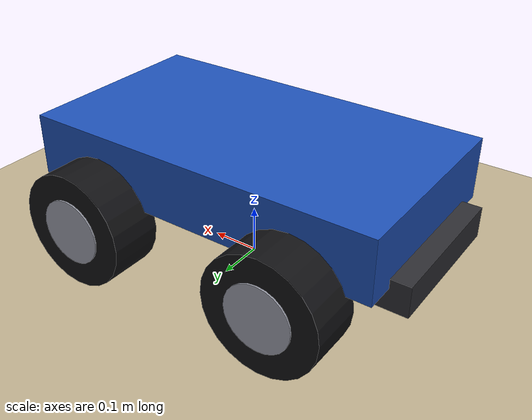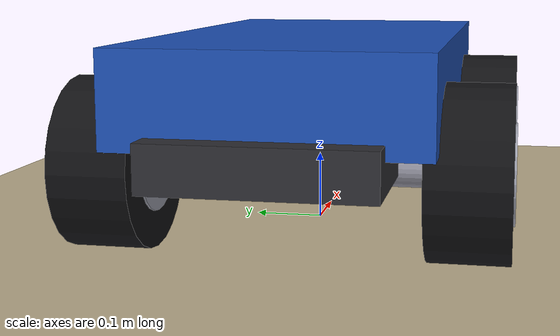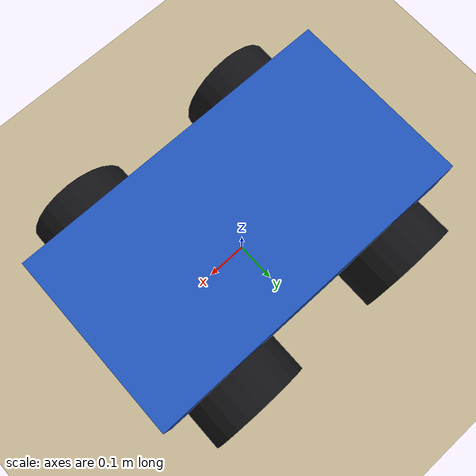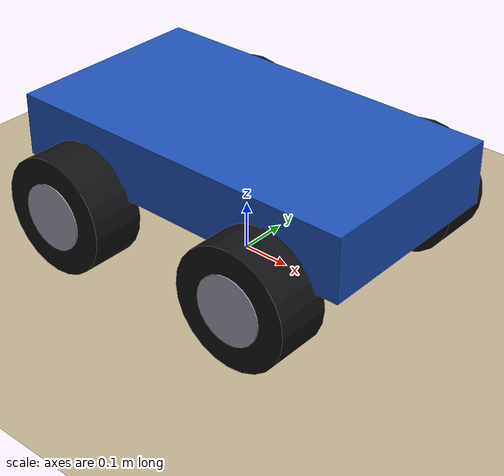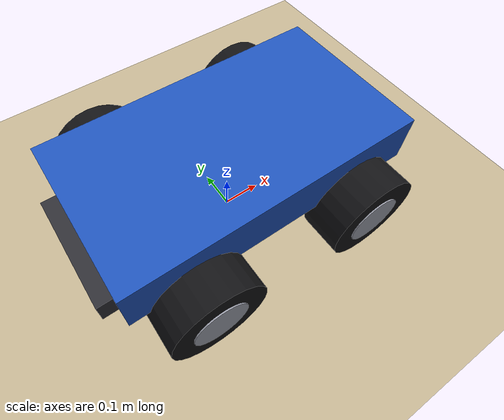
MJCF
<!-- Placeholder to just get rl working mostly made with AI!!!!! -->

<mujoco model="rover_scene">

  <compiler angle="radian" autolimits="true"/>

  <!-- timestep dropped to 0.002 s; implicitfast handles stiff contacts better -->
  <option timestep="0.002"
          gravity="0 0 -9.81"
          iterations="50"
          solver="Newton"
          integrator="implicitfast"/>

  <visual>
    <global offwidth="1280" offheight="720"/>
    <quality shadowsize="4096"/>
    <map znear="0.01" zfar="200"/>
  </visual>

  <asset>
    <texture name="checker"
             type="2d"
             builtin="checker"
             width="512" height="512"
             rgb1="0.68 0.62 0.50"
             rgb2="0.82 0.76 0.62"/>
    <material name="ground_mat"
              texture="checker"
              texrepeat="20 10"
              reflectance="0.06"/>

    <material name="chassis_mat" rgba="0.12 0.32 0.72 1"  reflectance="0.15"/>
    <material name="wheel_mat"   rgba="0.07 0.07 0.08 1"  reflectance="0.05"/>
    <material name="rim_mat"     rgba="0.62 0.63 0.68 1"  reflectance="0.35"/>
    <material name="ballast_mat" rgba="0.18 0.18 0.20 1"  reflectance="0.05"/>
    <material name="axle_mat"    rgba="0.55 0.55 0.60 1"  reflectance="0.25"/>

    <material name="goal_outer_mat" rgba="0.05 0.90 0.15 0.55"/>
    <material name="goal_inner_mat" rgba="0.05 1.00 0.05 0.95"/>
  </asset>

  <worldbody>

    <light name="key_sun"
           directional="true"
           pos="6 -4 10"
           dir="-0.45 0.28 -1.0"
           diffuse="0.88 0.82 0.74"
           specular="0.30 0.28 0.24"
           castshadow="true"/>

    <light name="fill"
           directional="true"
           pos="-5 4 6"
           dir="0.42 -0.32 -0.85"
           diffuse="0.22 0.25 0.36"
           specular="0.0 0.0 0.0"
           castshadow="false"/>

    <light name="rim"
           directional="true"
           pos="0 6 5"
           dir="0.0 -0.75 -0.65"
           diffuse="0.14 0.16 0.20"
           specular="0.06 0.06 0.08"
           castshadow="false"/>

    <geom name="ground"
          type="plane"
          size="120 60 0.1"
          material="ground_mat"
          condim="3"
          friction="1.0 0.005 0.0001"/>

    <body name="chassis" pos="0 0 0.20">
      <freejoint name="root"/>

      <geom name="chassis_body"
            type="box"
            size="0.38 0.21 0.065"
            pos="0 0 0.025"
            material="chassis_mat"
            mass="3.5"/>

      <geom name="ballast"
            type="box"
            size="0.27 0.15 0.032"
            pos="-0.15 0 -0.052"
            material="ballast_mat"
            mass="7.0"/>

      <geom name="axle_f"  type="cylinder" size="0.022 0.235"
            pos=" 0.22 0 -0.08" euler="1.5708 0 0"
            material="axle_mat" mass="0.05"
            contype="0" conaffinity="0"/>
      <geom name="axle_r"  type="cylinder" size="0.022 0.235"
            pos="-0.22 0 -0.08" euler="1.5708 0 0"
            material="axle_mat" mass="0.05"
            contype="0" conaffinity="0"/>

      <site name="imu" pos="0 0 0" size="0.01"/>

      <camera name="robot_pov"
              pos="0.15 0 0.25"
              xyaxes="0 -1 0  0.18 0 1"
              fovy="80"/>

      <body name="wheel_fl" pos=" 0.22  0.245 -0.08">
        <joint name="spin_fl" type="hinge" axis="0 1 0" damping="2.0"/>
        <geom name="tyre_fl" type="cylinder" size="0.12 0.055"
              euler="1.5708 0 0" material="wheel_mat" mass="0.65"
              friction="1.3 0.005 0.0001"/>
        <geom name="rim_fl"  type="cylinder" size="0.068 0.058"
              euler="1.5708 0 0" material="rim_mat"   mass="0.0"
              contype="0" conaffinity="0"/>
      </body>

      <body name="wheel_fr" pos=" 0.22 -0.245 -0.08">
        <joint name="spin_fr" type="hinge" axis="0 1 0" damping="2.0"/>
        <geom name="tyre_fr" type="cylinder" size="0.12 0.055"
              euler="1.5708 0 0" material="wheel_mat" mass="0.65"
              friction="1.3 0.005 0.0001"/>
        <geom name="rim_fr"  type="cylinder" size="0.068 0.058"
              euler="1.5708 0 0" material="rim_mat"   mass="0.0"
              contype="0" conaffinity="0"/>
      </body>

      <body name="wheel_rl" pos="-0.22  0.245 -0.08">
        <joint name="spin_rl" type="hinge" axis="0 1 0" damping="2.0"/>
        <geom name="tyre_rl" type="cylinder" size="0.12 0.055"
              euler="1.5708 0 0" material="wheel_mat" mass="0.65"
              friction="1.3 0.005 0.0001"/>
        <geom name="rim_rl"  type="cylinder" size="0.068 0.058"
              euler="1.5708 0 0" material="rim_mat"   mass="0.0"
              contype="0" conaffinity="0"/>
      </body>

      <body name="wheel_rr" pos="-0.22 -0.245 -0.08">
        <joint name="spin_rr" type="hinge" axis="0 1 0" damping="2.0"/>
        <geom name="tyre_rr" type="cylinder" size="0.12 0.055"
              euler="1.5708 0 0" material="wheel_mat" mass="0.65"
              friction="1.3 0.005 0.0001"/>
        <geom name="rim_rr"  type="cylinder" size="0.068 0.058"
              euler="1.5708 0 0" material="rim_mat"   mass="0.0"
              contype="0" conaffinity="0"/>
      </body>

    </body>
  </worldbody>

  <actuator>
    <velocity name="motor_fl" joint="spin_fl" kv="6" ctrlrange="-20 20" ctrllimited="true"/>
    <velocity name="motor_fr" joint="spin_fr" kv="6" ctrlrange="-20 20" ctrllimited="true"/>
    <velocity name="motor_rl" joint="spin_rl" kv="6" ctrlrange="-20 20" ctrllimited="true"/>
    <velocity name="motor_rr" joint="spin_rr" kv="6" ctrlrange="-20 20" ctrllimited="true"/>
  </actuator>

  <!--        SENSORS      -->
  <sensor>
    <framepos     name="chassis_pos"     objtype="site" objname="imu"/>
    <framequat    name="chassis_quat"    objtype="site" objname="imu"/>
    <framelinvel  name="chassis_linvel"  objtype="site" objname="imu"/>
    <frameangvel  name="chassis_angvel"  objtype="site" objname="imu"/>
    <gyro         name="gyro"            site="imu"/>
    <accelerometer name="accel"          site="imu"/>
  </sensor>

</mujoco>
